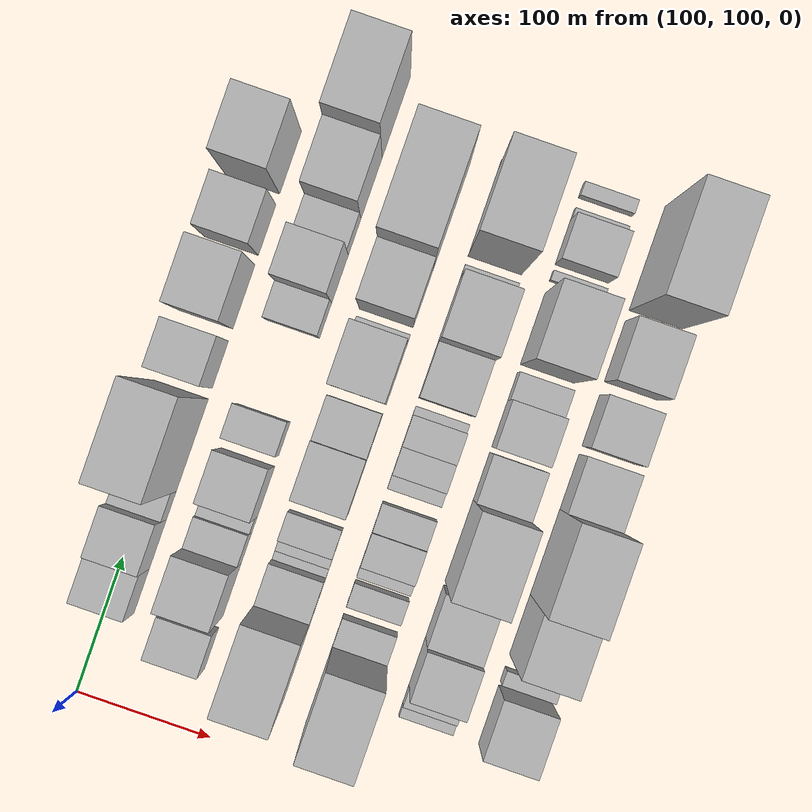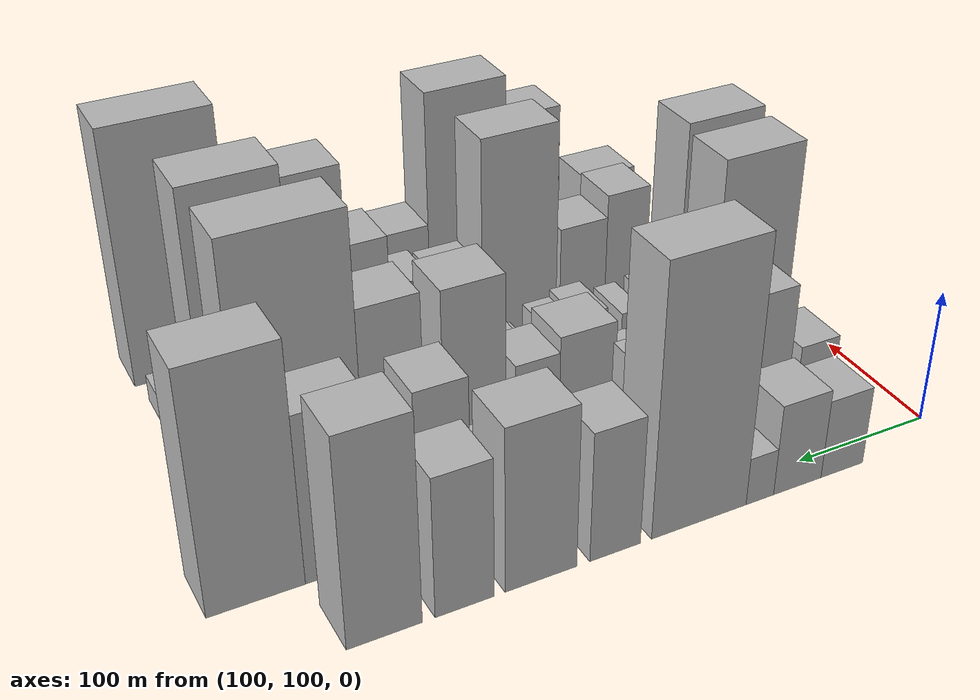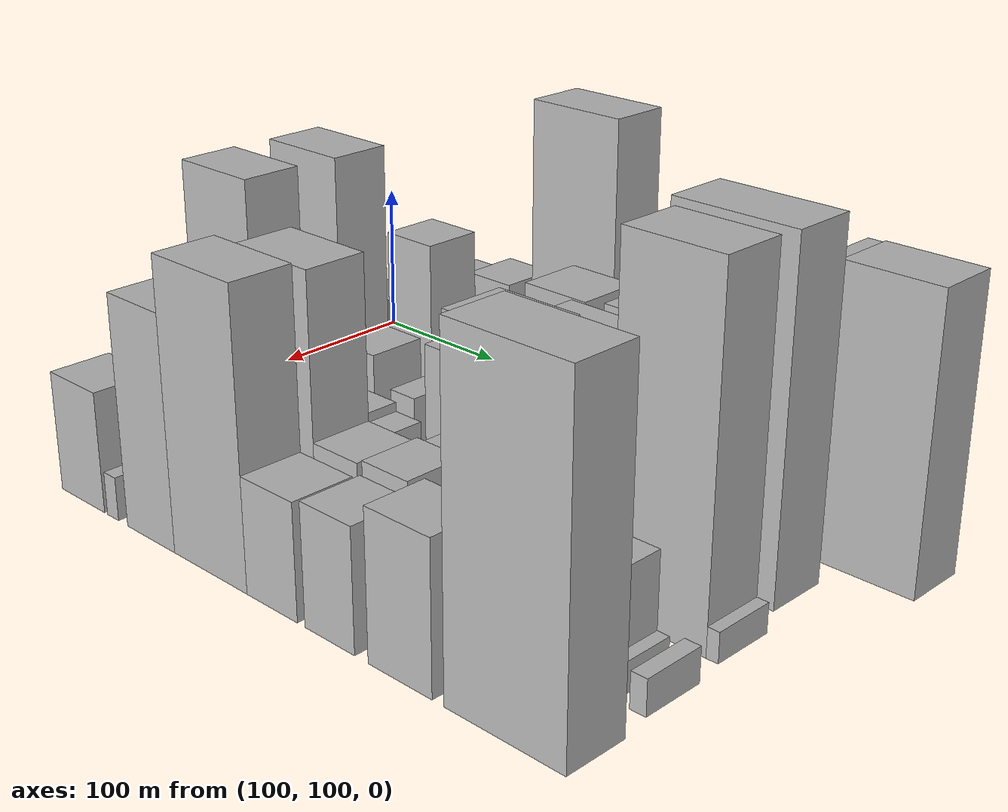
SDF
<sdf version="1.6">
 <world name="default">
  <model name="building_31">
   <static>1</static>
   <pose>100.0000 181.6192 0 0.000000 0.000000 0.000000</pose>
   <link name="link">
    <pose>0 0 30.00 0 0 0</pose>
    <collision name="collision"><geometry><box><size>40.0000 33.2796 60.0000</size></box></geometry></collision>
    <visual name="visual">
     <cast_shadows>0</cast_shadows>
     <geometry><box><size>40.0000 33.2796 60.0000</size></box></geometry>
     <material>
      <script>
       <uri>model://HANNAS_wall/materials/scripts</uri>
       <uri>model://HANNAS_wall/materials/textures</uri>
       <name>vrc/HANNAS_wall</name>
      </script>
     </material>
    </visual>
   </link>
  </model>
  <model name="building_32">
   <static>1</static>
   <pose>100.0000 216.7348 0 0.000000 0.000000 0.000000</pose>
   <link name="link">
    <pose>0 0 34.50 0 0 0</pose>
    <collision name="collision"><geometry><box><size>40.0000 36.9516 69.0000</size></box></geometry></collision>
    <visual name="visual">
     <cast_shadows>0</cast_shadows>
     <geometry><box><size>40.0000 36.9516 69.0000</size></box></geometry>
     <material>
      <script>
       <uri>model://HANNAS_wall/materials/scripts</uri>
       <uri>model://HANNAS_wall/materials/textures</uri>
       <name>vrc/HANNAS_wall</name>
      </script>
     </material>
    </visual>
   </link>
  </model>
  <model name="building_33">
   <static>1</static>
   <pose>100.0000 245.6876 0 0.000000 0.000000 0.000000</pose>
   <link name="link">
    <pose>0 0 18.00 0 0 0</pose>
    <collision name="collision"><geometry><box><size>40.0000 20.9540 36.0000</size></box></geometry></collision>
    <visual name="visual">
     <cast_shadows>0</cast_shadows>
     <geometry><box><size>40.0000 20.9540 36.0000</size></box></geometry>
     <material>
      <script>
       <uri>model://HANNAS_wall/materials/scripts</uri>
       <uri>model://HANNAS_wall/materials/textures</uri>
       <name>vrc/HANNAS_wall</name>
      </script>
     </material>
    </visual>
   </link>
  </model>
  <model name="building_34">
   <static>1</static>
   <pose>100.0000 290.8866 0 0.000000 0.000000 0.000000</pose>
   <link name="link">
    <pose>0 0 99.00 0 0 0</pose>
    <collision name="collision"><geometry><box><size>40.0000 69.4439 198.0000</size></box></geometry></collision>
    <visual name="visual">
     <cast_shadows>0</cast_shadows>
     <geometry><box><size>40.0000 69.4439 198.0000</size></box></geometry>
     <material>
      <script>
       <uri>model://HANNAS_wall/materials/scripts</uri>
       <uri>model://HANNAS_wall/materials/textures</uri>
       <name>vrc/HANNAS_wall</name>
      </script>
     </material>
    </visual>
   </link>
  </model>
  <model name="building_35">
   <static>1</static>
   <pose>100.0000 351.2448 0 0.000000 0.000000 0.000000</pose>
   <link name="link">
    <pose>0 0 48.00 0 0 0</pose>
    <collision name="collision"><geometry><box><size>40.0000 35.2725 96.0000</size></box></geometry></collision>
    <visual name="visual">
     <cast_shadows>0</cast_shadows>
     <geometry><box><size>40.0000 35.2725 96.0000</size></box></geometry>
     <material>
      <script>
       <uri>model://HANNAS_wall/materials/scripts</uri>
       <uri>model://HANNAS_wall/materials/textures</uri>
       <name>vrc/HANNAS_wall</name>
      </script>
     </material>
    </visual>
   </link>
  </model>
  <model name="building_36">
   <static>1</static>
   <pose>100.0000 401.8530 0 0.000000 0.000000 0.000000</pose>
   <link name="link">
    <pose>0 0 60.00 0 0 0</pose>
    <collision name="collision"><geometry><box><size>40.0000 47.9439 120.0000</size></box></geometry></collision>
    <visual name="visual">
     <cast_shadows>0</cast_shadows>
     <geometry><box><size>40.0000 47.9439 120.0000</size></box></geometry>
     <material>
      <script>
       <uri>model://HANNAS_wall/materials/scripts</uri>
       <uri>model://HANNAS_wall/materials/textures</uri>
       <name>vrc/HANNAS_wall</name>
      </script>
     </material>
    </visual>
   </link>
  </model>
  <model name="building_37">
   <static>1</static>
   <pose>100.0000 451.7910 0 0.000000 0.000000 0.000000</pose>
   <link name="link">
    <pose>0 0 51.00 0 0 0</pose>
    <collision name="collision"><geometry><box><size>40.0000 37.9322 102.0000</size></box></geometry></collision>
    <visual name="visual">
     <cast_shadows>0</cast_shadows>
     <geometry><box><size>40.0000 37.9322 102.0000</size></box></geometry>
     <material>
      <script>
       <uri>model://HANNAS_wall/materials/scripts</uri>
       <uri>model://HANNAS_wall/materials/textures</uri>
       <name>vrc/HANNAS_wall</name>
      </script>
     </material>
    </visual>
   </link>
  </model>
  <model name="building_38">
   <static>1</static>
   <pose>100.0000 502.1103 0 0.000000 0.000000 0.000000</pose>
   <link name="link">
    <pose>0 0 75.00 0 0 0</pose>
    <collision name="collision"><geometry><box><size>40.0000 46.7064 150.0000</size></box></geometry></collision>
    <visual name="visual">
     <cast_shadows>0</cast_shadows>
     <geometry><box><size>40.0000 46.7064 150.0000</size></box></geometry>
     <material>
      <script>
       <uri>model://HANNAS_wall/materials/scripts</uri>
       <uri>model://HANNAS_wall/materials/textures</uri>
       <name>vrc/HANNAS_wall</name>
      </script>
     </material>
    </visual>
   </link>
  </model>
  <model name="building_80">
   <static>1</static>
   <pose>160.0000 160.0477 0 0.000000 0.000000 0.000000</pose>
   <link name="link">
    <pose>0 0 28.50 0 0 0</pose>
    <collision name="collision"><geometry><box><size>40.0000 30.9721 57.0000</size></box></geometry></collision>
    <visual name="visual">
     <cast_shadows>0</cast_shadows>
     <geometry><box><size>40.0000 30.9721 57.0000</size></box></geometry>
     <material>
      <script>
       <uri>model://HANNAS_wall/materials/scripts</uri>
       <uri>model://HANNAS_wall/materials/textures</uri>
       <name>vrc/HANNAS_wall</name>
      </script>
     </material>
    </visual>
   </link>
  </model>
  <model name="building_81">
   <static>1</static>
   <pose>160.0000 203.5156 0 0.000000 0.000000 0.000000</pose>
   <link name="link">
    <pose>0 0 54.00 0 0 0</pose>
    <collision name="collision"><geometry><box><size>40.0000 39.9636 108.0000</size></box></geometry></collision>
    <visual name="visual">
     <cast_shadows>0</cast_shadows>
     <geometry><box><size>40.0000 39.9636 108.0000</size></box></geometry>
     <material>
      <script>
       <uri>model://HANNAS_wall/materials/scripts</uri>
       <uri>model://HANNAS_wall/materials/textures</uri>
       <name>vrc/HANNAS_wall</name>
      </script>
     </material>
    </visual>
   </link>
  </model>
  <model name="building_82">
   <static>1</static>
   <pose>160.0000 235.0564 0 0.000000 0.000000 0.000000</pose>
   <link name="link">
    <pose>0 0 19.50 0 0 0</pose>
    <collision name="collision"><geometry><box><size>40.0000 23.1180 39.0000</size></box></geometry></collision>
    <visual name="visual">
     <cast_shadows>0</cast_shadows>
     <geometry><box><size>40.0000 23.1180 39.0000</size></box></geometry>
     <material>
      <script>
       <uri>model://HANNAS_wall/materials/scripts</uri>
       <uri>model://HANNAS_wall/materials/textures</uri>
       <name>vrc/HANNAS_wall</name>
      </script>
     </material>
    </visual>
   </link>
  </model>
  <model name="building_83">
   <static>1</static>
   <pose>160.0000 252.2606 0 0.000000 0.000000 0.000000</pose>
   <link name="link">
    <pose>0 0 13.50 0 0 0</pose>
    <collision name="collision"><geometry><box><size>40.0000 11.2905 27.0000</size></box></geometry></collision>
    <visual name="visual">
     <cast_shadows>0</cast_shadows>
     <geometry><box><size>40.0000 11.2905 27.0000</size></box></geometry>
     <material>
      <script>
       <uri>model://HANNAS_wall/materials/scripts</uri>
       <uri>model://HANNAS_wall/materials/textures</uri>
       <name>vrc/HANNAS_wall</name>
      </script>
     </material>
    </visual>
   </link>
  </model>
  <model name="building_84">
   <static>1</static>
   <pose>160.0000 276.9344 0 0.000000 0.000000 0.000000</pose>
   <link name="link">
    <pose>0 0 37.50 0 0 0</pose>
    <collision name="collision"><geometry><box><size>40.0000 38.0570 75.0000</size></box></geometry></collision>
    <visual name="visual">
     <cast_shadows>0</cast_shadows>
     <geometry><box><size>40.0000 38.0570 75.0000</size></box></geometry>
     <material>
      <script>
       <uri>model://HANNAS_wall/materials/scripts</uri>
       <uri>model://HANNAS_wall/materials/textures</uri>
       <name>vrc/HANNAS_wall</name>
      </script>
     </material>
    </visual>
   </link>
  </model>
  <model name="building_85">
   <static>1</static>
   <pose>160.0000 316.5850 0 0.000000 0.000000 0.000000</pose>
   <link name="link">
    <pose>0 0 22.50 0 0 0</pose>
    <collision name="collision"><geometry><box><size>40.0000 25.2442 45.0000</size></box></geometry></collision>
    <visual name="visual">
     <cast_shadows>0</cast_shadows>
     <geometry><box><size>40.0000 25.2442 45.0000</size></box></geometry>
     <material>
      <script>
       <uri>model://HANNAS_wall/materials/scripts</uri>
       <uri>model://HANNAS_wall/materials/textures</uri>
       <name>vrc/HANNAS_wall</name>
      </script>
     </material>
    </visual>
   </link>
  </model>
  <model name="building_86">
   <static>1</static>
   <pose>160.0000 404.9586 0 0.000000 0.000000 0.000000</pose>
   <link name="link">
    <pose>0 0 22.50 0 0 0</pose>
    <collision name="collision"><geometry><box><size>40.0000 26.5010 45.0000</size></box></geometry></collision>
    <visual name="visual">
     <cast_shadows>0</cast_shadows>
     <geometry><box><size>40.0000 26.5010 45.0000</size></box></geometry>
     <material>
      <script>
       <uri>model://HANNAS_wall/materials/scripts</uri>
       <uri>model://HANNAS_wall/materials/textures</uri>
       <name>vrc/HANNAS_wall</name>
      </script>
     </material>
    </visual>
   </link>
  </model>
  <model name="building_87">
   <static>1</static>
   <pose>160.0000 436.0203 0 0.000000 0.000000 0.000000</pose>
   <link name="link">
    <pose>0 0 57.00 0 0 0</pose>
    <collision name="collision"><geometry><box><size>40.0000 35.6223 114.0000</size></box></geometry></collision>
    <visual name="visual">
     <cast_shadows>0</cast_shadows>
     <geometry><box><size>40.0000 35.6223 114.0000</size></box></geometry>
     <material>
      <script>
       <uri>model://HANNAS_wall/materials/scripts</uri>
       <uri>model://HANNAS_wall/materials/textures</uri>
       <name>vrc/HANNAS_wall</name>
      </script>
     </material>
    </visual>
   </link>
  </model>
  <model name="building_88">
   <static>1</static>
   <pose>160.0000 467.3192 0 0.000000 0.000000 0.000000</pose>
   <link name="link">
    <pose>0 0 24.00 0 0 0</pose>
    <collision name="collision"><geometry><box><size>40.0000 26.9755 48.0000</size></box></geometry></collision>
    <visual name="visual">
     <cast_shadows>0</cast_shadows>
     <geometry><box><size>40.0000 26.9755 48.0000</size></box></geometry>
     <material>
      <script>
       <uri>model://HANNAS_wall/materials/scripts</uri>
       <uri>model://HANNAS_wall/materials/textures</uri>
       <name>vrc/HANNAS_wall</name>
      </script>
     </material>
    </visual>
   </link>
  </model>
  <model name="building_89">
   <static>1</static>
   <pose>160.0000 503.6208 0 0.000000 0.000000 0.000000</pose>
   <link name="link">
    <pose>0 0 61.50 0 0 0</pose>
    <collision name="collision"><geometry><box><size>40.0000 45.6277 123.0000</size></box></geometry></collision>
    <visual name="visual">
     <cast_shadows>0</cast_shadows>
     <geometry><box><size>40.0000 45.6277 123.0000</size></box></geometry>
     <material>
      <script>
       <uri>model://HANNAS_wall/materials/scripts</uri>
       <uri>model://HANNAS_wall/materials/textures</uri>
       <name>vrc/HANNAS_wall</name>
      </script>
     </material>
    </visual>
   </link>
  </model>
  <model name="building_90">
   <static>1</static>
   <pose>160.0000 556.7810 0 0.000000 0.000000 0.000000</pose>
   <link name="link">
    <pose>0 0 87.00 0 0 0</pose>
    <collision name="collision"><geometry><box><size>40.0000 60.6925 174.0000</size></box></geometry></collision>
    <visual name="visual">
     <cast_shadows>0</cast_shadows>
     <geometry><box><size>40.0000 60.6925 174.0000</size></box></geometry>
     <material>
      <script>
       <uri>model://HANNAS_wall/materials/scripts</uri>
       <uri>model://HANNAS_wall/materials/textures</uri>
       <name>vrc/HANNAS_wall</name>
      </script>
     </material>
    </visual>
   </link>
  </model>
  <model name="building_137">
   <static>1</static>
   <pose>220.0000 173.1972 0 0.000000 0.000000 0.000000</pose>
   <link name="link">
    <pose>0 0 87.00 0 0 0</pose>
    <collision name="collision"><geometry><box><size>40.0000 62.1234 174.0000</size></box></geometry></collision>
    <visual name="visual">
     <cast_shadows>0</cast_shadows>
     <geometry><box><size>40.0000 62.1234 174.0000</size></box></geometry>
     <material>
      <script>
       <uri>model://HANNAS_wall/materials/scripts</uri>
       <uri>model://HANNAS_wall/materials/textures</uri>
       <name>vrc/HANNAS_wall</name>
      </script>
     </material>
    </visual>
   </link>
  </model>
  <model name="building_138">
   <static>1</static>
   <pose>220.0000 219.4032 0 0.000000 0.000000 0.000000</pose>
   <link name="link">
    <pose>0 0 27.00 0 0 0</pose>
    <collision name="collision"><geometry><box><size>40.0000 30.2886 54.0000</size></box></geometry></collision>
    <visual name="visual">
     <cast_shadows>0</cast_shadows>
     <geometry><box><size>40.0000 30.2886 54.0000</size></box></geometry>
     <material>
      <script>
       <uri>model://HANNAS_wall/materials/scripts</uri>
       <uri>model://HANNAS_wall/materials/textures</uri>
       <name>vrc/HANNAS_wall</name>
      </script>
     </material>
    </visual>
   </link>
  </model>
  <model name="building_139">
   <static>1</static>
   <pose>220.0000 237.8460 0 0.000000 0.000000 0.000000</pose>
   <link name="link">
    <pose>0 0 7.50 0 0 0</pose>
    <collision name="collision"><geometry><box><size>40.0000 6.5970 15.0000</size></box></geometry></collision>
    <visual name="visual">
     <cast_shadows>0</cast_shadows>
     <geometry><box><size>40.0000 6.5970 15.0000</size></box></geometry>
     <material>
      <script>
       <uri>model://HANNAS_wall/materials/scripts</uri>
       <uri>model://HANNAS_wall/materials/textures</uri>
       <name>vrc/HANNAS_wall</name>
      </script>
     </material>
    </visual>
   </link>
  </model>
  <model name="building_140">
   <static>1</static>
   <pose>220.0000 245.3827 0 0.000000 0.000000 0.000000</pose>
   <link name="link">
    <pose>0 0 9.00 0 0 0</pose>
    <collision name="collision"><geometry><box><size>40.0000 8.4764 18.0000</size></box></geometry></collision>
    <visual name="visual">
     <cast_shadows>0</cast_shadows>
     <geometry><box><size>40.0000 8.4764 18.0000</size></box></geometry>
     <material>
      <script>
       <uri>model://HANNAS_wall/materials/scripts</uri>
       <uri>model://HANNAS_wall/materials/textures</uri>
       <name>vrc/HANNAS_wall</name>
      </script>
     </material>
    </visual>
   </link>
  </model>
  <model name="building_141">
   <static>1</static>
   <pose>220.0000 260.2615 0 0.000000 0.000000 0.000000</pose>
   <link name="link">
    <pose>0 0 18.00 0 0 0</pose>
    <collision name="collision"><geometry><box><size>40.0000 21.2811 36.0000</size></box></geometry></collision>
    <visual name="visual">
     <cast_shadows>0</cast_shadows>
     <geometry><box><size>40.0000 21.2811 36.0000</size></box></geometry>
     <material>
      <script>
       <uri>model://HANNAS_wall/materials/scripts</uri>
       <uri>model://HANNAS_wall/materials/textures</uri>
       <name>vrc/HANNAS_wall</name>
      </script>
     </material>
    </visual>
   </link>
  </model>
  <model name="building_142">
   <static>1</static>
   <pose>220.0000 302.0960 0 0.000000 0.000000 0.000000</pose>
   <link name="link">
    <pose>0 0 37.50 0 0 0</pose>
    <collision name="collision"><geometry><box><size>40.0000 42.3879 75.0000</size></box></geometry></collision>
    <visual name="visual">
     <cast_shadows>0</cast_shadows>
     <geometry><box><size>40.0000 42.3879 75.0000</size></box></geometry>
     <material>
      <script>
       <uri>model://HANNAS_wall/materials/scripts</uri>
       <uri>model://HANNAS_wall/materials/textures</uri>
       <name>vrc/HANNAS_wall</name>
      </script>
     </material>
    </visual>
   </link>
  </model>
  <model name="building_143">
   <static>1</static>
   <pose>220.0000 339.6277 0 0.000000 0.000000 0.000000</pose>
   <link name="link">
    <pose>0 0 31.50 0 0 0</pose>
    <collision name="collision"><geometry><box><size>40.0000 32.6756 63.0000</size></box></geometry></collision>
    <visual name="visual">
     <cast_shadows>0</cast_shadows>
     <geometry><box><size>40.0000 32.6756 63.0000</size></box></geometry>
     <material>
      <script>
       <uri>model://HANNAS_wall/materials/scripts</uri>
       <uri>model://HANNAS_wall/materials/textures</uri>
       <name>vrc/HANNAS_wall</name>
      </script>
     </material>
    </visual>
   </link>
  </model>
  <model name="building_144">
   <static>1</static>
   <pose>220.0000 385.1655 0 0.000000 0.000000 0.000000</pose>
   <link name="link">
    <pose>0 0 67.50 0 0 0</pose>
    <collision name="collision"><geometry><box><size>40.0000 44.3999 135.0000</size></box></geometry></collision>
    <visual name="visual">
     <cast_shadows>0</cast_shadows>
     <geometry><box><size>40.0000 44.3999 135.0000</size></box></geometry>
     <material>
      <script>
       <uri>model://HANNAS_wall/materials/scripts</uri>
       <uri>model://HANNAS_wall/materials/textures</uri>
       <name>vrc/HANNAS_wall</name>
      </script>
     </material>
    </visual>
   </link>
  </model>
  <model name="building_145">
   <static>1</static>
   <pose>220.0000 410.9731 0 0.000000 0.000000 0.000000</pose>
   <link name="link">
    <pose>0 0 9.00 0 0 0</pose>
    <collision name="collision"><geometry><box><size>40.0000 7.2152 18.0000</size></box></geometry></collision>
    <visual name="visual">
     <cast_shadows>0</cast_shadows>
     <geometry><box><size>40.0000 7.2152 18.0000</size></box></geometry>
     <material>
      <script>
       <uri>model://HANNAS_wall/materials/scripts</uri>
       <uri>model://HANNAS_wall/materials/textures</uri>
       <name>vrc/HANNAS_wall</name>
      </script>
     </material>
    </visual>
   </link>
  </model>
  <model name="building_146">
   <static>1</static>
   <pose>220.0000 441.5113 0 0.000000 0.000000 0.000000</pose>
   <link name="link">
    <pose>0 0 69.00 0 0 0</pose>
    <collision name="collision"><geometry><box><size>40.0000 41.8612 138.0000</size></box></geometry></collision>
    <visual name="visual">
     <cast_shadows>0</cast_shadows>
     <geometry><box><size>40.0000 41.8612 138.0000</size></box></geometry>
     <material>
      <script>
       <uri>model://HANNAS_wall/materials/scripts</uri>
       <uri>model://HANNAS_wall/materials/textures</uri>
       <name>vrc/HANNAS_wall</name>
      </script>
     </material>
    </visual>
   </link>
  </model>
  <model name="building_147">
   <static>1</static>
   <pose>220.0000 501.7446 0 0.000000 0.000000 0.000000</pose>
   <link name="link">
    <pose>0 0 103.50 0 0 0</pose>
    <collision name="collision"><geometry><box><size>40.0000 78.6054 207.0000</size></box></geometry></collision>
    <visual name="visual">
     <cast_shadows>0</cast_shadows>
     <geometry><box><size>40.0000 78.6054 207.0000</size></box></geometry>
     <material>
      <script>
       <uri>model://HANNAS_wall/materials/scripts</uri>
       <uri>model://HANNAS_wall/materials/textures</uri>
       <name>vrc/HANNAS_wall</name>
      </script>
     </material>
    </visual>
   </link>
  </model>
  <model name="building_193">
   <static>1</static>
   <pose>280.0000 162.5146 0 0.000000 0.000000 0.000000</pose>
   <link name="link">
    <pose>0 0 85.50 0 0 0</pose>
    <collision name="collision"><geometry><box><size>40.0000 61.2483 171.0000</size></box></geometry></collision>
    <visual name="visual">
     <cast_shadows>0</cast_shadows>
     <geometry><box><size>40.0000 61.2483 171.0000</size></box></geometry>
     <material>
      <script>
       <uri>model://HANNAS_wall/materials/scripts</uri>
       <uri>model://HANNAS_wall/materials/textures</uri>
       <name>vrc/HANNAS_wall</name>
      </script>
     </material>
    </visual>
   </link>
  </model>
  <model name="building_194">
   <static>1</static>
   <pose>280.0000 203.5305 0 0.000000 0.000000 0.000000</pose>
   <link name="link">
    <pose>0 0 18.00 0 0 0</pose>
    <collision name="collision"><geometry><box><size>40.0000 20.7836 36.0000</size></box></geometry></collision>
    <visual name="visual">
     <cast_shadows>0</cast_shadows>
     <geometry><box><size>40.0000 20.7836 36.0000</size></box></geometry>
     <material>
      <script>
       <uri>model://HANNAS_wall/materials/scripts</uri>
       <uri>model://HANNAS_wall/materials/textures</uri>
       <name>vrc/HANNAS_wall</name>
      </script>
     </material>
    </visual>
   </link>
  </model>
  <model name="building_195">
   <static>1</static>
   <pose>280.0000 230.6888 0 0.000000 0.000000 0.000000</pose>
   <link name="link">
    <pose>0 0 16.50 0 0 0</pose>
    <collision name="collision"><geometry><box><size>40.0000 17.5331 33.0000</size></box></geometry></collision>
    <visual name="visual">
     <cast_shadows>0</cast_shadows>
     <geometry><box><size>40.0000 17.5331 33.0000</size></box></geometry>
     <material>
      <script>
       <uri>model://HANNAS_wall/materials/scripts</uri>
       <uri>model://HANNAS_wall/materials/textures</uri>
       <name>vrc/HANNAS_wall</name>
      </script>
     </material>
    </visual>
   </link>
  </model>
  <model name="building_196">
   <static>1</static>
   <pose>280.0000 246.9701 0 0.000000 0.000000 0.000000</pose>
   <link name="link">
    <pose>0 0 10.50 0 0 0</pose>
    <collision name="collision"><geometry><box><size>40.0000 9.0295 21.0000</size></box></geometry></collision>
    <visual name="visual">
     <cast_shadows>0</cast_shadows>
     <geometry><box><size>40.0000 9.0295 21.0000</size></box></geometry>
     <material>
      <script>
       <uri>model://HANNAS_wall/materials/scripts</uri>
       <uri>model://HANNAS_wall/materials/textures</uri>
       <name>vrc/HANNAS_wall</name>
      </script>
     </material>
    </visual>
   </link>
  </model>
  <model name="building_197">
   <static>1</static>
   <pose>280.0000 264.0399 0 0.000000 0.000000 0.000000</pose>
   <link name="link">
    <pose>0 0 21.00 0 0 0</pose>
    <collision name="collision"><geometry><box><size>40.0000 25.1100 42.0000</size></box></geometry></collision>
    <visual name="visual">
     <cast_shadows>0</cast_shadows>
     <geometry><box><size>40.0000 25.1100 42.0000</size></box></geometry>
     <material>
      <script>
       <uri>model://HANNAS_wall/materials/scripts</uri>
       <uri>model://HANNAS_wall/materials/textures</uri>
       <name>vrc/HANNAS_wall</name>
      </script>
     </material>
    </visual>
   </link>
  </model>
  <model name="building_198">
   <static>1</static>
   <pose>280.0000 287.3359 0 0.000000 0.000000 0.000000</pose>
   <link name="link">
    <pose>0 0 18.00 0 0 0</pose>
    <collision name="collision"><geometry><box><size>40.0000 21.4821 36.0000</size></box></geometry></collision>
    <visual name="visual">
     <cast_shadows>0</cast_shadows>
     <geometry><box><size>40.0000 21.4821 36.0000</size></box></geometry>
     <material>
      <script>
       <uri>model://HANNAS_wall/materials/scripts</uri>
       <uri>model://HANNAS_wall/materials/textures</uri>
       <name>vrc/HANNAS_wall</name>
      </script>
     </material>
    </visual>
   </link>
  </model>
  <model name="building_199">
   <static>1</static>
   <pose>280.0000 313.2843 0 0.000000 0.000000 0.000000</pose>
   <link name="link">
    <pose>0 0 12.00 0 0 0</pose>
    <collision name="collision"><geometry><box><size>40.0000 10.4147 24.0000</size></box></geometry></collision>
    <visual name="visual">
     <cast_shadows>0</cast_shadows>
     <geometry><box><size>40.0000 10.4147 24.0000</size></box></geometry>
     <material>
      <script>
       <uri>model://HANNAS_wall/materials/scripts</uri>
       <uri>model://HANNAS_wall/materials/textures</uri>
       <name>vrc/HANNAS_wall</name>
      </script>
     </material>
    </visual>
   </link>
  </model>
  <model name="building_200">
   <static>1</static>
   <pose>280.0000 328.8669 0 0.000000 0.000000 0.000000</pose>
   <link name="link">
    <pose>0 0 18.00 0 0 0</pose>
    <collision name="collision"><geometry><box><size>40.0000 20.7505 36.0000</size></box></geometry></collision>
    <visual name="visual">
     <cast_shadows>0</cast_shadows>
     <geometry><box><size>40.0000 20.7505 36.0000</size></box></geometry>
     <material>
      <script>
       <uri>model://HANNAS_wall/materials/scripts</uri>
       <uri>model://HANNAS_wall/materials/textures</uri>
       <name>vrc/HANNAS_wall</name>
      </script>
     </material>
    </visual>
   </link>
  </model>
  <model name="building_201">
   <static>1</static>
   <pose>280.0000 350.8903 0 0.000000 0.000000 0.000000</pose>
   <link name="link">
    <pose>0 0 19.50 0 0 0</pose>
    <collision name="collision"><geometry><box><size>40.0000 23.2963 39.0000</size></box></geometry></collision>
    <visual name="visual">
     <cast_shadows>0</cast_shadows>
     <geometry><box><size>40.0000 23.2963 39.0000</size></box></geometry>
     <material>
      <script>
       <uri>model://HANNAS_wall/materials/scripts</uri>
       <uri>model://HANNAS_wall/materials/textures</uri>
       <name>vrc/HANNAS_wall</name>
      </script>
     </material>
    </visual>
   </link>
  </model>
  <model name="building_202">
   <static>1</static>
   <pose>280.0000 365.7634 0 0.000000 0.000000 0.000000</pose>
   <link name="link">
    <pose>0 0 7.50 0 0 0</pose>
    <collision name="collision"><geometry><box><size>40.0000 6.4499 15.0000</size></box></geometry></collision>
    <visual name="visual">
     <cast_shadows>0</cast_shadows>
     <geometry><box><size>40.0000 6.4499 15.0000</size></box></geometry>
     <material>
      <script>
       <uri>model://HANNAS_wall/materials/scripts</uri>
       <uri>model://HANNAS_wall/materials/textures</uri>
       <name>vrc/HANNAS_wall</name>
      </script>
     </material>
    </visual>
   </link>
  </model>
  <model name="building_203">
   <static>1</static>
   <pose>280.0000 395.0712 0 0.000000 0.000000 0.000000</pose>
   <link name="link">
    <pose>0 0 34.50 0 0 0</pose>
    <collision name="collision"><geometry><box><size>40.0000 40.1656 69.0000</size></box></geometry></collision>
    <visual name="visual">
     <cast_shadows>0</cast_shadows>
     <geometry><box><size>40.0000 40.1656 69.0000</size></box></geometry>
     <material>
      <script>
       <uri>model://HANNAS_wall/materials/scripts</uri>
       <uri>model://HANNAS_wall/materials/textures</uri>
       <name>vrc/HANNAS_wall</name>
      </script>
     </material>
    </visual>
   </link>
  </model>
  <model name="building_204">
   <static>1</static>
   <pose>280.0000 438.1563 0 0.000000 0.000000 0.000000</pose>
   <link name="link">
    <pose>0 0 72.00 0 0 0</pose>
    <collision name="collision"><geometry><box><size>40.0000 46.0046 144.0000</size></box></geometry></collision>
    <visual name="visual">
     <cast_shadows>0</cast_shadows>
     <geometry><box><size>40.0000 46.0046 144.0000</size></box></geometry>
     <material>
      <script>
       <uri>model://HANNAS_wall/materials/scripts</uri>
       <uri>model://HANNAS_wall/materials/textures</uri>
       <name>vrc/HANNAS_wall</name>
      </script>
     </material>
    </visual>
   </link>
  </model>
  <model name="building_205">
   <static>1</static>
   <pose>280.0000 467.0010 0 0.000000 0.000000 0.000000</pose>
   <link name="link">
    <pose>0 0 13.50 0 0 0</pose>
    <collision name="collision"><geometry><box><size>40.0000 11.6847 27.0000</size></box></geometry></collision>
    <visual name="visual">
     <cast_shadows>0</cast_shadows>
     <geometry><box><size>40.0000 11.6847 27.0000</size></box></geometry>
     <material>
      <script>
       <uri>model://HANNAS_wall/materials/scripts</uri>
       <uri>model://HANNAS_wall/materials/textures</uri>
       <name>vrc/HANNAS_wall</name>
      </script>
     </material>
    </visual>
   </link>
  </model>
  <model name="building_206">
   <static>1</static>
   <pose>280.0000 512.3466 0 0.000000 0.000000 0.000000</pose>
   <link name="link">
    <pose>0 0 105.00 0 0 0</pose>
    <collision name="collision"><geometry><box><size>40.0000 63.0065 210.0000</size></box></geometry></collision>
    <visual name="visual">
     <cast_shadows>0</cast_shadows>
     <geometry><box><size>40.0000 63.0065 210.0000</size></box></geometry>
     <material>
      <script>
       <uri>model://HANNAS_wall/materials/scripts</uri>
       <uri>model://HANNAS_wall/materials/textures</uri>
       <name>vrc/HANNAS_wall</name>
      </script>
     </material>
    </visual>
   </link>
  </model>
  <model name="building_207">
   <static>1</static>
   <pose>280.0000 547.6409 0 0.000000 0.000000 0.000000</pose>
   <link name="link">
    <pose>0 0 9.00 0 0 0</pose>
    <collision name="collision"><geometry><box><size>40.0000 7.5820 18.0000</size></box></geometry></collision>
    <visual name="visual">
     <cast_shadows>0</cast_shadows>
     <geometry><box><size>40.0000 7.5820 18.0000</size></box></geometry>
     <material>
      <script>
       <uri>model://HANNAS_wall/materials/scripts</uri>
       <uri>model://HANNAS_wall/materials/textures</uri>
       <name>vrc/HANNAS_wall</name>
      </script>
     </material>
    </visual>
   </link>
  </model>
  <model name="building_256">
   <static>1</static>
   <pose>340.0000 164.3847 0 0.000000 0.000000 0.000000</pose>
   <link name="link">
    <pose>0 0 9.00 0 0 0</pose>
    <collision name="collision"><geometry><box><size>40.0000 8.4218 18.0000</size></box></geometry></collision>
    <visual name="visual">
     <cast_shadows>0</cast_shadows>
     <geometry><box><size>40.0000 8.4218 18.0000</size></box></geometry>
     <material>
      <script>
       <uri>model://HANNAS_wall/materials/scripts</uri>
       <uri>model://HANNAS_wall/materials/textures</uri>
       <name>vrc/HANNAS_wall</name>
      </script>
     </material>
    </visual>
   </link>
  </model>
  <model name="building_257">
   <static>1</static>
   <pose>340.0000 175.3200 0 0.000000 0.000000 0.000000</pose>
   <link name="link">
    <pose>0 0 13.50 0 0 0</pose>
    <collision name="collision"><geometry><box><size>40.0000 13.4488 27.0000</size></box></geometry></collision>
    <visual name="visual">
     <cast_shadows>0</cast_shadows>
     <geometry><box><size>40.0000 13.4488 27.0000</size></box></geometry>
     <material>
      <script>
       <uri>model://HANNAS_wall/materials/scripts</uri>
       <uri>model://HANNAS_wall/materials/textures</uri>
       <name>vrc/HANNAS_wall</name>
      </script>
     </material>
    </visual>
   </link>
  </model>
  <model name="building_258">
   <static>1</static>
   <pose>340.0000 199.8427 0 0.000000 0.000000 0.000000</pose>
   <link name="link">
    <pose>0 0 46.50 0 0 0</pose>
    <collision name="collision"><geometry><box><size>40.0000 35.5965 93.0000</size></box></geometry></collision>
    <visual name="visual">
     <cast_shadows>0</cast_shadows>
     <geometry><box><size>40.0000 35.5965 93.0000</size></box></geometry>
     <material>
      <script>
       <uri>model://HANNAS_wall/materials/scripts</uri>
       <uri>model://HANNAS_wall/materials/textures</uri>
       <name>vrc/HANNAS_wall</name>
      </script>
     </material>
    </visual>
   </link>
  </model>
  <model name="building_259">
   <static>1</static>
   <pose>340.0000 236.9743 0 0.000000 0.000000 0.000000</pose>
   <link name="link">
    <pose>0 0 37.50 0 0 0</pose>
    <collision name="collision"><geometry><box><size>40.0000 38.6668 75.0000</size></box></geometry></collision>
    <visual name="visual">
     <cast_shadows>0</cast_shadows>
     <geometry><box><size>40.0000 38.6668 75.0000</size></box></geometry>
     <material>
      <script>
       <uri>model://HANNAS_wall/materials/scripts</uri>
       <uri>model://HANNAS_wall/materials/textures</uri>
       <name>vrc/HANNAS_wall</name>
      </script>
     </material>
    </visual>
   </link>
  </model>
  <model name="building_260">
   <static>1</static>
   <pose>340.0000 289.5508 0 0.000000 0.000000 0.000000</pose>
   <link name="link">
    <pose>0 0 81.00 0 0 0</pose>
    <collision name="collision"><geometry><box><size>40.0000 60.4862 162.0000</size></box></geometry></collision>
    <visual name="visual">
     <cast_shadows>0</cast_shadows>
     <geometry><box><size>40.0000 60.4862 162.0000</size></box></geometry>
     <material>
      <script>
       <uri>model://HANNAS_wall/materials/scripts</uri>
       <uri>model://HANNAS_wall/materials/textures</uri>
       <name>vrc/HANNAS_wall</name>
      </script>
     </material>
    </visual>
   </link>
  </model>
  <model name="building_261">
   <static>1</static>
   <pose>340.0000 337.5586 0 0.000000 0.000000 0.000000</pose>
   <link name="link">
    <pose>0 0 31.50 0 0 0</pose>
    <collision name="collision"><geometry><box><size>40.0000 35.5293 63.0000</size></box></geometry></collision>
    <visual name="visual">
     <cast_shadows>0</cast_shadows>
     <geometry><box><size>40.0000 35.5293 63.0000</size></box></geometry>
     <material>
      <script>
       <uri>model://HANNAS_wall/materials/scripts</uri>
       <uri>model://HANNAS_wall/materials/textures</uri>
       <name>vrc/HANNAS_wall</name>
      </script>
     </material>
    </visual>
   </link>
  </model>
  <model name="building_262">
   <static>1</static>
   <pose>340.0000 376.7767 0 0.000000 0.000000 0.000000</pose>
   <link name="link">
    <pose>0 0 33.00 0 0 0</pose>
    <collision name="collision"><geometry><box><size>40.0000 34.9069 66.0000</size></box></geometry></collision>
    <visual name="visual">
     <cast_shadows>0</cast_shadows>
     <geometry><box><size>40.0000 34.9069 66.0000</size></box></geometry>
     <material>
      <script>
       <uri>model://HANNAS_wall/materials/scripts</uri>
       <uri>model://HANNAS_wall/materials/textures</uri>
       <name>vrc/HANNAS_wall</name>
      </script>
     </material>
    </visual>
   </link>
  </model>
  <model name="building_263">
   <static>1</static>
   <pose>340.0000 404.5411 0 0.000000 0.000000 0.000000</pose>
   <link name="link">
    <pose>0 0 18.00 0 0 0</pose>
    <collision name="collision"><geometry><box><size>40.0000 20.6219 36.0000</size></box></geometry></collision>
    <visual name="visual">
     <cast_shadows>0</cast_shadows>
     <geometry><box><size>40.0000 20.6219 36.0000</size></box></geometry>
     <material>
      <script>
       <uri>model://HANNAS_wall/materials/scripts</uri>
       <uri>model://HANNAS_wall/materials/textures</uri>
       <name>vrc/HANNAS_wall</name>
      </script>
     </material>
    </visual>
   </link>
  </model>
  <model name="building_264">
   <static>1</static>
   <pose>340.0000 447.4924 0 0.000000 0.000000 0.000000</pose>
   <link name="link">
    <pose>0 0 84.00 0 0 0</pose>
    <collision name="collision"><geometry><box><size>40.0000 53.2807 168.0000</size></box></geometry></collision>
    <visual name="visual">
     <cast_shadows>0</cast_shadows>
     <geometry><box><size>40.0000 53.2807 168.0000</size></box></geometry>
     <material>
      <script>
       <uri>model://HANNAS_wall/materials/scripts</uri>
       <uri>model://HANNAS_wall/materials/textures</uri>
       <name>vrc/HANNAS_wall</name>
      </script>
     </material>
    </visual>
   </link>
  </model>
  <model name="building_265">
   <static>1</static>
   <pose>340.0000 486.8226 0 0.000000 0.000000 0.000000</pose>
   <link name="link">
    <pose>0 0 7.50 0 0 0</pose>
    <collision name="collision"><geometry><box><size>40.0000 7.3797 15.0000</size></box></geometry></collision>
    <visual name="visual">
     <cast_shadows>0</cast_shadows>
     <geometry><box><size>40.0000 7.3797 15.0000</size></box></geometry>
     <material>
      <script>
       <uri>model://HANNAS_wall/materials/scripts</uri>
       <uri>model://HANNAS_wall/materials/textures</uri>
       <name>vrc/HANNAS_wall</name>
      </script>
     </material>
    </visual>
   </link>
  </model>
  <model name="building_266">
   <static>1</static>
   <pose>340.0000 512.0081 0 0.000000 0.000000 0.000000</pose>
   <link name="link">
    <pose>0 0 31.50 0 0 0</pose>
    <collision name="collision"><geometry><box><size>40.0000 32.9914 63.0000</size></box></geometry></collision>
    <visual name="visual">
     <cast_shadows>0</cast_shadows>
     <geometry><box><size>40.0000 32.9914 63.0000</size></box></geometry>
     <material>
      <script>
       <uri>model://HANNAS_wall/materials/scripts</uri>
       <uri>model://HANNAS_wall/materials/textures</uri>
       <name>vrc/HANNAS_wall</name>
      </script>
     </material>
    </visual>
   </link>
  </model>
  <model name="building_267">
   <static>1</static>
   <pose>340.0000 532.4509 0 0.000000 0.000000 0.000000</pose>
   <link name="link">
    <pose>0 0 9.00 0 0 0</pose>
    <collision name="collision"><geometry><box><size>40.0000 7.8941 18.0000</size></box></geometry></collision>
    <visual name="visual">
     <cast_shadows>0</cast_shadows>
     <geometry><box><size>40.0000 7.8941 18.0000</size></box></geometry>
     <material>
      <script>
       <uri>model://HANNAS_wall/materials/scripts</uri>
       <uri>model://HANNAS_wall/materials/textures</uri>
       <name>vrc/HANNAS_wall</name>
      </script>
     </material>
    </visual>
   </link>
  </model>
  <model name="building_268">
   <static>1</static>
   <pose>340.0000 550.5064 0 0.000000 0.000000 0.000000</pose>
   <link name="link">
    <pose>0 0 10.50 0 0 0</pose>
    <collision name="collision"><geometry><box><size>40.0000 10.2170 21.0000</size></box></geometry></collision>
    <visual name="visual">
     <cast_shadows>0</cast_shadows>
     <geometry><box><size>40.0000 10.2170 21.0000</size></box></geometry>
     <material>
      <script>
       <uri>model://HANNAS_wall/materials/scripts</uri>
       <uri>model://HANNAS_wall/materials/textures</uri>
       <name>vrc/HANNAS_wall</name>
      </script>
     </material>
    </visual>
   </link>
  </model>
  <model name="building_308">
   <static>1</static>
   <pose>400.0000 180.4770 0 0.000000 0.000000 0.000000</pose>
   <link name="link">
    <pose>0 0 37.50 0 0 0</pose>
    <collision name="collision"><geometry><box><size>40.0000 43.5903 75.0000</size></box></geometry></collision>
    <visual name="visual">
     <cast_shadows>0</cast_shadows>
     <geometry><box><size>40.0000 43.5903 75.0000</size></box></geometry>
     <material>
      <script>
       <uri>model://HANNAS_wall/materials/scripts</uri>
       <uri>model://HANNAS_wall/materials/textures</uri>
       <name>vrc/HANNAS_wall</name>
      </script>
     </material>
    </visual>
   </link>
  </model>
  <model name="building_309">
   <static>1</static>
   <pose>400.0000 210.7258 0 0.000000 0.000000 0.000000</pose>
   <link name="link">
    <pose>0 0 13.50 0 0 0</pose>
    <collision name="collision"><geometry><box><size>40.0000 10.9074 27.0000</size></box></geometry></collision>
    <visual name="visual">
     <cast_shadows>0</cast_shadows>
     <geometry><box><size>40.0000 10.9074 27.0000</size></box></geometry>
     <material>
      <script>
       <uri>model://HANNAS_wall/materials/scripts</uri>
       <uri>model://HANNAS_wall/materials/textures</uri>
       <name>vrc/HANNAS_wall</name>
      </script>
     </material>
    </visual>
   </link>
  </model>
  <model name="building_310">
   <static>1</static>
   <pose>400.0000 247.5016 0 0.000000 0.000000 0.000000</pose>
   <link name="link">
    <pose>0 0 70.50 0 0 0</pose>
    <collision name="collision"><geometry><box><size>40.0000 44.6442 141.0000</size></box></geometry></collision>
    <visual name="visual">
     <cast_shadows>0</cast_shadows>
     <geometry><box><size>40.0000 44.6442 141.0000</size></box></geometry>
     <material>
      <script>
       <uri>model://HANNAS_wall/materials/scripts</uri>
       <uri>model://HANNAS_wall/materials/textures</uri>
       <name>vrc/HANNAS_wall</name>
      </script>
     </material>
    </visual>
   </link>
  </model>
  <model name="building_311">
   <static>1</static>
   <pose>400.0000 301.6992 0 0.000000 0.000000 0.000000</pose>
   <link name="link">
    <pose>0 0 87.00 0 0 0</pose>
    <collision name="collision"><geometry><box><size>40.0000 63.7509 174.0000</size></box></geometry></collision>
    <visual name="visual">
     <cast_shadows>0</cast_shadows>
     <geometry><box><size>40.0000 63.7509 174.0000</size></box></geometry>
     <material>
      <script>
       <uri>model://HANNAS_wall/materials/scripts</uri>
       <uri>model://HANNAS_wall/materials/textures</uri>
       <name>vrc/HANNAS_wall</name>
      </script>
     </material>
    </visual>
   </link>
  </model>
  <model name="building_312">
   <static>1</static>
   <pose>400.0000 354.1876 0 0.000000 0.000000 0.000000</pose>
   <link name="link">
    <pose>0 0 34.50 0 0 0</pose>
    <collision name="collision"><geometry><box><size>40.0000 41.2258 69.0000</size></box></geometry></collision>
    <visual name="visual">
     <cast_shadows>0</cast_shadows>
     <geometry><box><size>40.0000 41.2258 69.0000</size></box></geometry>
     <material>
      <script>
       <uri>model://HANNAS_wall/materials/scripts</uri>
       <uri>model://HANNAS_wall/materials/textures</uri>
       <name>vrc/HANNAS_wall</name>
      </script>
     </material>
    </visual>
   </link>
  </model>
  <model name="building_313">
   <static>1</static>
   <pose>400.0000 399.8289 0 0.000000 0.000000 0.000000</pose>
   <link name="link">
    <pose>0 0 36.00 0 0 0</pose>
    <collision name="collision"><geometry><box><size>40.0000 38.0568 72.0000</size></box></geometry></collision>
    <visual name="visual">
     <cast_shadows>0</cast_shadows>
     <geometry><box><size>40.0000 38.0568 72.0000</size></box></geometry>
     <material>
      <script>
       <uri>model://HANNAS_wall/materials/scripts</uri>
       <uri>model://HANNAS_wall/materials/textures</uri>
       <name>vrc/HANNAS_wall</name>
      </script>
     </material>
    </visual>
   </link>
  </model>
  <model name="building_314">
   <static>1</static>
   <pose>400.0000 451.5305 0 0.000000 0.000000 0.000000</pose>
   <link name="link">
    <pose>0 0 43.50 0 0 0</pose>
    <collision name="collision"><geometry><box><size>40.0000 45.3464 87.0000</size></box></geometry></collision>
    <visual name="visual">
     <cast_shadows>0</cast_shadows>
     <geometry><box><size>40.0000 45.3464 87.0000</size></box></geometry>
     <material>
      <script>
       <uri>model://HANNAS_wall/materials/scripts</uri>
       <uri>model://HANNAS_wall/materials/textures</uri>
       <name>vrc/HANNAS_wall</name>
      </script>
     </material>
    </visual>
   </link>
  </model>
  <model name="building_315">
   <static>1</static>
   <pose>400.0000 521.0367 0 0.000000 0.000000 0.000000</pose>
   <link name="link">
    <pose>0 0 99.00 0 0 0</pose>
    <collision name="collision"><geometry><box><size>40.0000 77.6660 198.0000</size></box></geometry></collision>
    <visual name="visual">
     <cast_shadows>0</cast_shadows>
     <geometry><box><size>40.0000 77.6660 198.0000</size></box></geometry>
     <material>
      <script>
       <uri>model://HANNAS_wall/materials/scripts</uri>
       <uri>model://HANNAS_wall/materials/textures</uri>
       <name>vrc/HANNAS_wall</name>
      </script>
     </material>
    </visual>
   </link>
  </model>
 </world>
</sdf>
